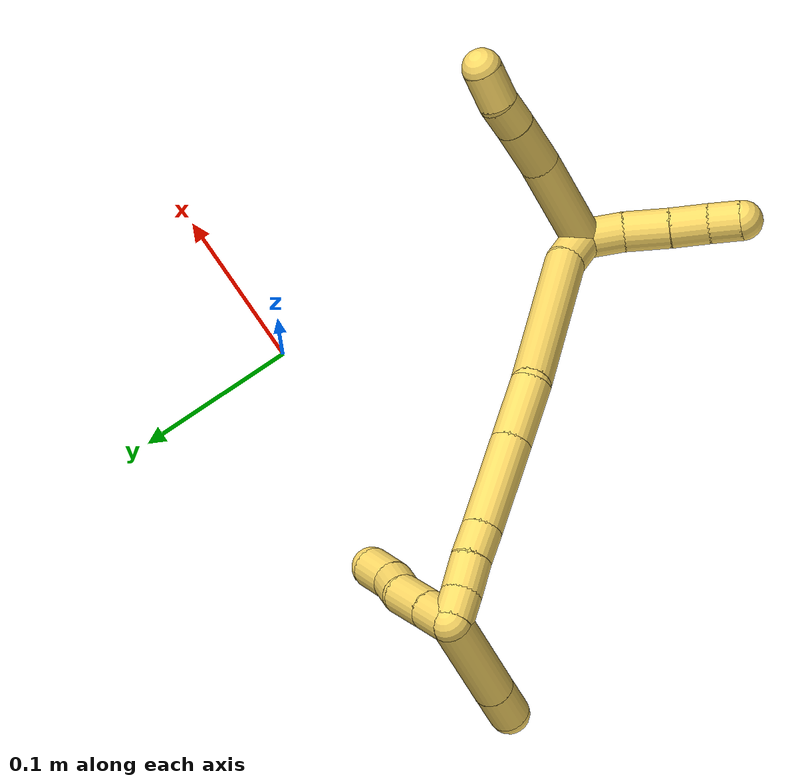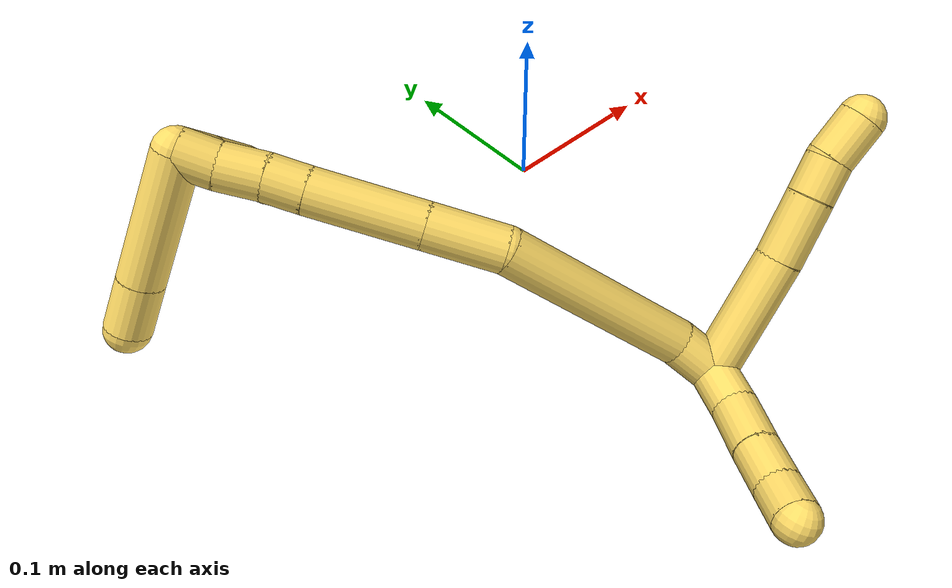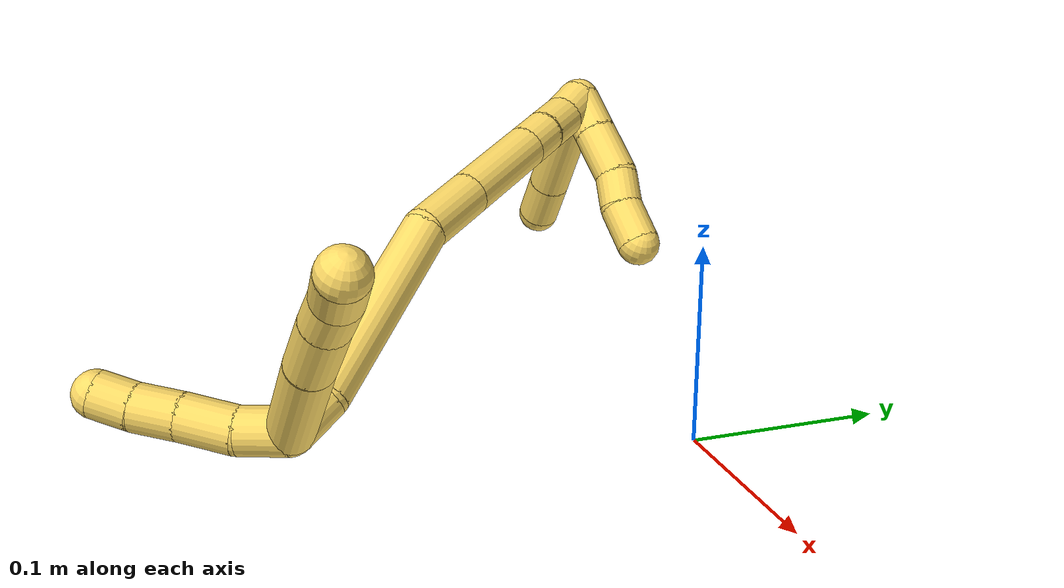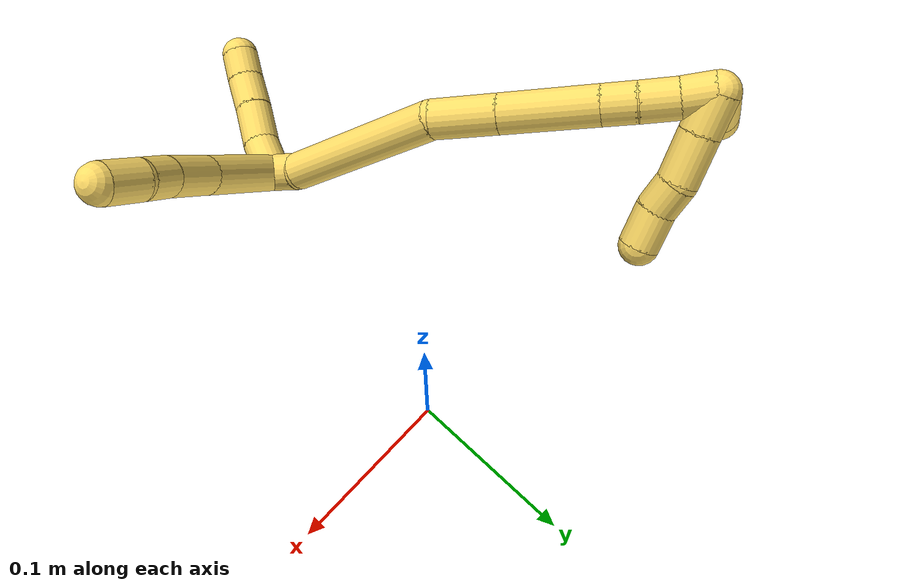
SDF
<sdf version="1.7">
 <world name="default">
  <model name="5">
   <static>0</static>
   <link name="5">
    <collision name="collision-cylinder-e_1_2_8">
     <pose>-0.00293 -0.005165 -0.033454 2.98841 -0.086332 -1.02531</pose>
     <geometry><cylinder><radius>0.0125</radius><length>0.067955</length></cylinder></geometry>
     <surface>
      <friction><ode><mu>1.16</mu><mu2>1.16</mu2><slip1>0</slip1><slip2>0</slip2></ode></friction>
      <contact><ode><kp>1e+06</kp><kd>1</kd><max_vel>0</max_vel><min_depth>0.001</min_depth></ode></contact>
     </surface>
    </collision>
    <visual name="visual-cylinder-e_1_2_8">
     <pose>-0.00293 -0.005165 -0.033454 2.98841 -0.086332 -1.02531</pose>
     <geometry><cylinder><radius>0.0125</radius><length>0.067955</length></cylinder></geometry>
     <material><ambient>1 0.858824 0.4 1</ambient></material>
    </visual>
    <collision name="collision-cylinder-e_2_8_9">
     <pose>-0.007709 -0.011854 -0.084584 3.05559 -0.103855 -1.75862</pose>
     <geometry><cylinder><radius>0.0125</radius><length>0.035674</length></cylinder></geometry>
     <surface>
      <friction><ode><mu>1.16</mu><mu2>1.16</mu2><slip1>0</slip1><slip2>0</slip2></ode></friction>
      <contact><ode><kp>1e+06</kp><kd>1</kd><max_vel>0</max_vel><min_depth>0.001</min_depth></ode></contact>
     </surface>
    </collision>
    <visual name="visual-cylinder-e_2_8_9">
     <pose>-0.007709 -0.011854 -0.084584 3.05559 -0.103855 -1.75862</pose>
     <geometry><cylinder><radius>0.0125</radius><length>0.035674</length></cylinder></geometry>
     <material><ambient>1 0.858824 0.4 1</ambient></material>
    </visual>
    <collision name="collision-cylinder-e_3_9_10">
     <pose>-0.011094 -0.014448 -0.112663 3.03906 -0.14588 -1.91717</pose>
     <geometry><cylinder><radius>0.0125</radius><length>0.02114</length></cylinder></geometry>
     <surface>
      <friction><ode><mu>1.16</mu><mu2>1.16</mu2><slip1>0</slip1><slip2>0</slip2></ode></friction>
      <contact><ode><kp>1e+06</kp><kd>1</kd><max_vel>0</max_vel><min_depth>0.001</min_depth></ode></contact>
     </surface>
    </collision>
    <visual name="visual-cylinder-e_3_9_10">
     <pose>-0.011094 -0.014448 -0.112663 3.03906 -0.14588 -1.91717</pose>
     <geometry><cylinder><radius>0.0125</radius><length>0.02114</length></cylinder></geometry>
     <material><ambient>1 0.858824 0.4 1</ambient></material>
    </visual>
    <collision name="collision-cylinder-e_4_10_6">
     <pose>-0.013853 -0.019404 -0.135005 2.82693 -0.09704 -0.594054</pose>
     <geometry><cylinder><radius>0.0125</radius><length>0.025231</length></cylinder></geometry>
     <surface>
      <friction><ode><mu>1.16</mu><mu2>1.16</mu2><slip1>0</slip1><slip2>0</slip2></ode></friction>
      <contact><ode><kp>1e+06</kp><kd>1</kd><max_vel>0</max_vel><min_depth>0.001</min_depth></ode></contact>
     </surface>
    </collision>
    <visual name="visual-cylinder-e_4_10_6">
     <pose>-0.013853 -0.019404 -0.135005 2.82693 -0.09704 -0.594054</pose>
     <geometry><cylinder><radius>0.0125</radius><length>0.025231</length></cylinder></geometry>
     <material><ambient>1 0.858824 0.4 1</ambient></material>
    </visual>
    <collision name="collision-cylinder-e_1_2_11">
     <pose>0.01165 -0.00392 0.003797 0.80127 1.13272 0.526134</pose>
     <geometry><cylinder><radius>0.0125</radius><length>0.025731</length></cylinder></geometry>
     <surface>
      <friction><ode><mu>1.16</mu><mu2>1.16</mu2><slip1>0</slip1><slip2>0</slip2></ode></friction>
      <contact><ode><kp>1e+06</kp><kd>1</kd><max_vel>0</max_vel><min_depth>0.001</min_depth></ode></contact>
     </surface>
    </collision>
    <visual name="visual-cylinder-e_1_2_11">
     <pose>0.01165 -0.00392 0.003797 0.80127 1.13272 0.526134</pose>
     <geometry><cylinder><radius>0.0125</radius><length>0.025731</length></cylinder></geometry>
     <material><ambient>1 0.858824 0.4 1</ambient></material>
    </visual>
    <collision name="collision-cylinder-e_2_11_12">
     <pose>0.037545 -0.009458 0.010554 0.500448 1.33828 0.398882</pose>
     <geometry><cylinder><radius>0.0125</radius><length>0.029276</length></cylinder></geometry>
     <surface>
      <friction><ode><mu>1.16</mu><mu2>1.16</mu2><slip1>0</slip1><slip2>0</slip2></ode></friction>
      <contact><ode><kp>1e+06</kp><kd>1</kd><max_vel>0</max_vel><min_depth>0.001</min_depth></ode></contact>
     </surface>
    </collision>
    <visual name="visual-cylinder-e_2_11_12">
     <pose>0.037545 -0.009458 0.010554 0.500448 1.33828 0.398882</pose>
     <geometry><cylinder><radius>0.0125</radius><length>0.029276</length></cylinder></geometry>
     <material><ambient>1 0.858824 0.4 1</ambient></material>
    </visual>
    <collision name="collision-cylinder-e_3_12_13">
     <pose>0.063541 -0.012972 0.015961 0.65896 1.31321 0.515341</pose>
     <geometry><cylinder><radius>0.0125</radius><length>0.024306</length></cylinder></geometry>
     <surface>
      <friction><ode><mu>1.16</mu><mu2>1.16</mu2><slip1>0</slip1><slip2>0</slip2></ode></friction>
      <contact><ode><kp>1e+06</kp><kd>1</kd><max_vel>0</max_vel><min_depth>0.001</min_depth></ode></contact>
     </surface>
    </collision>
    <visual name="visual-cylinder-e_3_12_13">
     <pose>0.063541 -0.012972 0.015961 0.65896 1.31321 0.515341</pose>
     <geometry><cylinder><radius>0.0125</radius><length>0.024306</length></cylinder></geometry>
     <material><ambient>1 0.858824 0.4 1</ambient></material>
    </visual>
    <collision name="collision-cylinder-e_4_13_5">
     <pose>0.085526 -0.015637 0.019708 0.534941 1.42428 0.464585</pose>
     <geometry><cylinder><radius>0.0125</radius><length>0.020687</length></cylinder></geometry>
     <surface>
      <friction><ode><mu>1.16</mu><mu2>1.16</mu2><slip1>0</slip1><slip2>0</slip2></ode></friction>
      <contact><ode><kp>1e+06</kp><kd>1</kd><max_vel>0</max_vel><min_depth>0.001</min_depth></ode></contact>
     </surface>
    </collision>
    <visual name="visual-cylinder-e_4_13_5">
     <pose>0.085526 -0.015637 0.019708 0.534941 1.42428 0.464585</pose>
     <geometry><cylinder><radius>0.0125</radius><length>0.020687</length></cylinder></geometry>
     <material><ambient>1 0.858824 0.4 1</ambient></material>
    </visual>
    <collision name="collision-cylinder-e_1_2_14">
     <pose>-0.003146 0.011356 -0.003871 -1.8993 -0.256475 0.356537</pose>
     <geometry><cylinder><radius>0.0125</radius><length>0.024806</length></cylinder></geometry>
     <surface>
      <friction><ode><mu>1.16</mu><mu2>1.16</mu2><slip1>0</slip1><slip2>0</slip2></ode></friction>
      <contact><ode><kp>1e+06</kp><kd>1</kd><max_vel>0</max_vel><min_depth>0.001</min_depth></ode></contact>
     </surface>
    </collision>
    <visual name="visual-cylinder-e_1_2_14">
     <pose>-0.003146 0.011356 -0.003871 -1.8993 -0.256475 0.356537</pose>
     <geometry><cylinder><radius>0.0125</radius><length>0.024806</length></cylinder></geometry>
     <material><ambient>1 0.858824 0.4 1</ambient></material>
    </visual>
    <collision name="collision-cylinder-e_2_14_15">
     <pose>-0.006309 0.075965 -0.019875 -1.79481 -0.000297 0.000372</pose>
     <geometry><cylinder><radius>0.0125</radius><length>0.109238</length></cylinder></geometry>
     <surface>
      <friction><ode><mu>1.16</mu><mu2>1.16</mu2><slip1>0</slip1><slip2>0</slip2></ode></friction>
      <contact><ode><kp>1e+06</kp><kd>1</kd><max_vel>0</max_vel><min_depth>0.001</min_depth></ode></contact>
     </surface>
    </collision>
    <visual name="visual-cylinder-e_2_14_15">
     <pose>-0.006309 0.075965 -0.019875 -1.79481 -0.000297 0.000372</pose>
     <geometry><cylinder><radius>0.0125</radius><length>0.109238</length></cylinder></geometry>
     <material><ambient>1 0.858824 0.4 1</ambient></material>
    </visual>
    <collision name="collision-cylinder-e_3_15_16">
     <pose>-0.010556 0.149534 -0.030943 -1.51841 -0.205077 0.194673</pose>
     <geometry><cylinder><radius>0.0125</radius><length>0.041555</length></cylinder></geometry>
     <surface>
      <friction><ode><mu>1.16</mu><mu2>1.16</mu2><slip1>0</slip1><slip2>0</slip2></ode></friction>
      <contact><ode><kp>1e+06</kp><kd>1</kd><max_vel>0</max_vel><min_depth>0.001</min_depth></ode></contact>
     </surface>
    </collision>
    <visual name="visual-cylinder-e_3_15_16">
     <pose>-0.010556 0.149534 -0.030943 -1.51841 -0.205077 0.194673</pose>
     <geometry><cylinder><radius>0.0125</radius><length>0.041555</length></cylinder></geometry>
     <material><ambient>1 0.858824 0.4 1</ambient></material>
    </visual>
    <collision name="collision-cylinder-e_4_16_17">
     <pose>-0.020856 0.199157 -0.028343 -1.51848 -0.203911 0.19358</pose>
     <geometry><cylinder><radius>0.0125</radius><length>0.059939</length></cylinder></geometry>
     <surface>
      <friction><ode><mu>1.16</mu><mu2>1.16</mu2><slip1>0</slip1><slip2>0</slip2></ode></friction>
      <contact><ode><kp>1e+06</kp><kd>1</kd><max_vel>0</max_vel><min_depth>0.001</min_depth></ode></contact>
     </surface>
    </collision>
    <visual name="visual-cylinder-e_4_16_17">
     <pose>-0.020856 0.199157 -0.028343 -1.51848 -0.203911 0.19358</pose>
     <geometry><cylinder><radius>0.0125</radius><length>0.059939</length></cylinder></geometry>
     <material><ambient>1 0.858824 0.4 1</ambient></material>
    </visual>
    <collision name="collision-cylinder-e_5_17_18">
     <pose>-0.029093 0.238597 -0.026533 -1.54363 -0.210735 0.205127</pose>
     <geometry><cylinder><radius>0.0125</radius><length>0.02073</length></cylinder></geometry>
     <surface>
      <friction><ode><mu>1.16</mu><mu2>1.16</mu2><slip1>0</slip1><slip2>0</slip2></ode></friction>
      <contact><ode><kp>1e+06</kp><kd>1</kd><max_vel>0</max_vel><min_depth>0.001</min_depth></ode></contact>
     </surface>
    </collision>
    <visual name="visual-cylinder-e_5_17_18">
     <pose>-0.029093 0.238597 -0.026533 -1.54363 -0.210735 0.205127</pose>
     <geometry><cylinder><radius>0.0125</radius><length>0.02073</length></cylinder></geometry>
     <material><ambient>1 0.858824 0.4 1</ambient></material>
    </visual>
    <collision name="collision-cylinder-e_6_18_19">
     <pose>-0.033379 0.260164 -0.025045 -1.46512 -0.182113 0.163904</pose>
     <geometry><cylinder><radius>0.0125</radius><length>0.023385</length></cylinder></geometry>
     <surface>
      <friction><ode><mu>1.16</mu><mu2>1.16</mu2><slip1>0</slip1><slip2>0</slip2></ode></friction>
      <contact><ode><kp>1e+06</kp><kd>1</kd><max_vel>0</max_vel><min_depth>0.001</min_depth></ode></contact>
     </surface>
    </collision>
    <visual name="visual-cylinder-e_6_18_19">
     <pose>-0.033379 0.260164 -0.025045 -1.46512 -0.182113 0.163904</pose>
     <geometry><cylinder><radius>0.0125</radius><length>0.023385</length></cylinder></geometry>
     <material><ambient>1 0.858824 0.4 1</ambient></material>
    </visual>
    <collision name="collision-cylinder-e_7_19_1">
     <pose>-0.036932 0.281668 -0.024084 -1.59579 -0.141563 0.145134</pose>
     <geometry><cylinder><radius>0.0125</radius><length>0.020347</length></cylinder></geometry>
     <surface>
      <friction><ode><mu>1.16</mu><mu2>1.16</mu2><slip1>0</slip1><slip2>0</slip2></ode></friction>
      <contact><ode><kp>1e+06</kp><kd>1</kd><max_vel>0</max_vel><min_depth>0.001</min_depth></ode></contact>
     </surface>
    </collision>
    <visual name="visual-cylinder-e_7_19_1">
     <pose>-0.036932 0.281668 -0.024084 -1.59579 -0.141563 0.145134</pose>
     <geometry><cylinder><radius>0.0125</radius><length>0.020347</length></cylinder></geometry>
     <material><ambient>1 0.858824 0.4 1</ambient></material>
    </visual>
    <collision name="collision-cylinder-e_1_1_20">
     <pose>-0.047541 0.284214 -0.021379 1.19628 -0.84851 -0.597165</pose>
     <geometry><cylinder><radius>0.0125</radius><length>0.024453</length></cylinder></geometry>
     <surface>
      <friction><ode><mu>1.16</mu><mu2>1.16</mu2><slip1>0</slip1><slip2>0</slip2></ode></friction>
      <contact><ode><kp>1e+06</kp><kd>1</kd><max_vel>0</max_vel><min_depth>0.001</min_depth></ode></contact>
     </surface>
    </collision>
    <visual name="visual-cylinder-e_1_1_20">
     <pose>-0.047541 0.284214 -0.021379 1.19628 -0.84851 -0.597165</pose>
     <geometry><cylinder><radius>0.0125</radius><length>0.024453</length></cylinder></geometry>
     <material><ambient>1 0.858824 0.4 1</ambient></material>
    </visual>
    <collision name="collision-cylinder-e_2_20_21">
     <pose>-0.068125 0.267423 -0.014636 1.18299 -0.850605 -0.590711</pose>
     <geometry><cylinder><radius>0.0125</radius><length>0.030361</length></cylinder></geometry>
     <surface>
      <friction><ode><mu>1.16</mu><mu2>1.16</mu2><slip1>0</slip1><slip2>0</slip2></ode></friction>
      <contact><ode><kp>1e+06</kp><kd>1</kd><max_vel>0</max_vel><min_depth>0.001</min_depth></ode></contact>
     </surface>
    </collision>
    <visual name="visual-cylinder-e_2_20_21">
     <pose>-0.068125 0.267423 -0.014636 1.18299 -0.850605 -0.590711</pose>
     <geometry><cylinder><radius>0.0125</radius><length>0.030361</length></cylinder></geometry>
     <material><ambient>1 0.858824 0.4 1</ambient></material>
    </visual>
    <collision name="collision-cylinder-e_3_21_22">
     <pose>-0.085052 0.250579 -0.007078 1.10882 -0.577665 -0.363902</pose>
     <geometry><cylinder><radius>0.0125</radius><length>0.020202</length></cylinder></geometry>
     <surface>
      <friction><ode><mu>1.16</mu><mu2>1.16</mu2><slip1>0</slip1><slip2>0</slip2></ode></friction>
      <contact><ode><kp>1e+06</kp><kd>1</kd><max_vel>0</max_vel><min_depth>0.001</min_depth></ode></contact>
     </surface>
    </collision>
    <visual name="visual-cylinder-e_3_21_22">
     <pose>-0.085052 0.250579 -0.007078 1.10882 -0.577665 -0.363902</pose>
     <geometry><cylinder><radius>0.0125</radius><length>0.020202</length></cylinder></geometry>
     <material><ambient>1 0.858824 0.4 1</ambient></material>
    </visual>
    <collision name="collision-cylinder-e_4_22_4">
     <pose>-0.099737 0.235148 -0.000102 1.18358 -0.82414 -0.571508</pose>
     <geometry><cylinder><radius>0.0125</radius><length>0.024984</length></cylinder></geometry>
     <surface>
      <friction><ode><mu>1.16</mu><mu2>1.16</mu2><slip1>0</slip1><slip2>0</slip2></ode></friction>
      <contact><ode><kp>1e+06</kp><kd>1</kd><max_vel>0</max_vel><min_depth>0.001</min_depth></ode></contact>
     </surface>
    </collision>
    <visual name="visual-cylinder-e_4_22_4">
     <pose>-0.099737 0.235148 -0.000102 1.18358 -0.82414 -0.571508</pose>
     <geometry><cylinder><radius>0.0125</radius><length>0.024984</length></cylinder></geometry>
     <material><ambient>1 0.858824 0.4 1</ambient></material>
    </visual>
    <collision name="collision-cylinder-e_1_1_23">
     <pose>-0.038562 0.292095 0.011582 -0.009981 -0.005415 2.7e-05</pose>
     <geometry><cylinder><radius>0.0125</radius><length>0.071839</length></cylinder></geometry>
     <surface>
      <friction><ode><mu>1.16</mu><mu2>1.16</mu2><slip1>0</slip1><slip2>0</slip2></ode></friction>
      <contact><ode><kp>1e+06</kp><kd>1</kd><max_vel>0</max_vel><min_depth>0.001</min_depth></ode></contact>
     </surface>
    </collision>
    <visual name="visual-cylinder-e_1_1_23">
     <pose>-0.038562 0.292095 0.011582 -0.009981 -0.005415 2.7e-05</pose>
     <geometry><cylinder><radius>0.0125</radius><length>0.071839</length></cylinder></geometry>
     <material><ambient>1 0.858824 0.4 1</ambient></material>
    </visual>
    <collision name="collision-cylinder-e_2_23_3">
     <pose>-0.038788 0.292526 0.061579 -0.005178 -0.002257 6e-06</pose>
     <geometry><cylinder><radius>0.0125</radius><length>0.028161</length></cylinder></geometry>
     <surface>
      <friction><ode><mu>1.16</mu><mu2>1.16</mu2><slip1>0</slip1><slip2>0</slip2></ode></friction>
      <contact><ode><kp>1e+06</kp><kd>1</kd><max_vel>0</max_vel><min_depth>0.001</min_depth></ode></contact>
     </surface>
    </collision>
    <visual name="visual-cylinder-e_2_23_3">
     <pose>-0.038788 0.292526 0.061579 -0.005178 -0.002257 6e-06</pose>
     <geometry><cylinder><radius>0.0125</radius><length>0.028161</length></cylinder></geometry>
     <material><ambient>1 0.858824 0.4 1</ambient></material>
    </visual>
    <collision name="collision-sphere-3">
     <pose>-0.03882 0.292599 0.075659 0 -0 0</pose>
     <geometry><sphere><radius>0.0125</radius></sphere></geometry>
     <surface>
      <friction><ode><mu>1.16</mu><mu2>1.16</mu2><slip1>0</slip1><slip2>0</slip2></ode></friction>
      <contact><ode><kp>1e+06</kp><kd>1</kd><max_vel>0</max_vel><min_depth>0.001</min_depth></ode></contact>
     </surface>
    </collision>
    <visual name="visual-sphere-3">
     <pose>-0.03882 0.292599 0.075659 0 -0 0</pose>
     <geometry><sphere><radius>0.0125</radius></sphere></geometry>
     <material><ambient>1 0.858824 0.4 1</ambient></material>
    </visual>
    <collision name="collision-sphere-23">
     <pose>-0.038756 0.292453 0.047499 0 -0 0</pose>
     <geometry><sphere><radius>0.0125</radius></sphere></geometry>
     <surface>
      <friction><ode><mu>1.16</mu><mu2>1.16</mu2><slip1>0</slip1><slip2>0</slip2></ode></friction>
      <contact><ode><kp>1e+06</kp><kd>1</kd><max_vel>0</max_vel><min_depth>0.001</min_depth></ode></contact>
     </surface>
    </collision>
    <visual name="visual-sphere-23">
     <pose>-0.038756 0.292453 0.047499 0 -0 0</pose>
     <geometry><sphere><radius>0.0125</radius></sphere></geometry>
     <material><ambient>1 0.858824 0.4 1</ambient></material>
    </visual>
    <collision name="collision-sphere-4">
     <pose>-0.108905 0.227292 0.003102 0 -0 0</pose>
     <geometry><sphere><radius>0.0125</radius></sphere></geometry>
     <surface>
      <friction><ode><mu>1.16</mu><mu2>1.16</mu2><slip1>0</slip1><slip2>0</slip2></ode></friction>
      <contact><ode><kp>1e+06</kp><kd>1</kd><max_vel>0</max_vel><min_depth>0.001</min_depth></ode></contact>
     </surface>
    </collision>
    <visual name="visual-sphere-4">
     <pose>-0.108905 0.227292 0.003102 0 -0 0</pose>
     <geometry><sphere><radius>0.0125</radius></sphere></geometry>
     <material><ambient>1 0.858824 0.4 1</ambient></material>
    </visual>
    <collision name="collision-sphere-22">
     <pose>-0.090568 0.243004 -0.003306 0 -0 0</pose>
     <geometry><sphere><radius>0.0125</radius></sphere></geometry>
     <surface>
      <friction><ode><mu>1.16</mu><mu2>1.16</mu2><slip1>0</slip1><slip2>0</slip2></ode></friction>
      <contact><ode><kp>1e+06</kp><kd>1</kd><max_vel>0</max_vel><min_depth>0.001</min_depth></ode></contact>
     </surface>
    </collision>
    <visual name="visual-sphere-22">
     <pose>-0.090568 0.243004 -0.003306 0 -0 0</pose>
     <geometry><sphere><radius>0.0125</radius></sphere></geometry>
     <material><ambient>1 0.858824 0.4 1</ambient></material>
    </visual>
    <collision name="collision-sphere-21">
     <pose>-0.079536 0.258154 -0.010849 0 -0 0</pose>
     <geometry><sphere><radius>0.0125</radius></sphere></geometry>
     <surface>
      <friction><ode><mu>1.16</mu><mu2>1.16</mu2><slip1>0</slip1><slip2>0</slip2></ode></friction>
      <contact><ode><kp>1e+06</kp><kd>1</kd><max_vel>0</max_vel><min_depth>0.001</min_depth></ode></contact>
     </surface>
    </collision>
    <visual name="visual-sphere-21">
     <pose>-0.079536 0.258154 -0.010849 0 -0 0</pose>
     <geometry><sphere><radius>0.0125</radius></sphere></geometry>
     <material><ambient>1 0.858824 0.4 1</ambient></material>
    </visual>
    <collision name="collision-sphere-20">
     <pose>-0.056714 0.276691 -0.018422 0 -0 0</pose>
     <geometry><sphere><radius>0.0125</radius></sphere></geometry>
     <surface>
      <friction><ode><mu>1.16</mu><mu2>1.16</mu2><slip1>0</slip1><slip2>0</slip2></ode></friction>
      <contact><ode><kp>1e+06</kp><kd>1</kd><max_vel>0</max_vel><min_depth>0.001</min_depth></ode></contact>
     </surface>
    </collision>
    <visual name="visual-sphere-20">
     <pose>-0.056714 0.276691 -0.018422 0 -0 0</pose>
     <geometry><sphere><radius>0.0125</radius></sphere></geometry>
     <material><ambient>1 0.858824 0.4 1</ambient></material>
    </visual>
    <collision name="collision-sphere-11">
     <pose>0.023301 -0.007839 0.007594 0 -0 0</pose>
     <geometry><sphere><radius>0.0125</radius></sphere></geometry>
     <surface>
      <friction><ode><mu>1.16</mu><mu2>1.16</mu2><slip1>0</slip1><slip2>0</slip2></ode></friction>
      <contact><ode><kp>1e+06</kp><kd>1</kd><max_vel>0</max_vel><min_depth>0.001</min_depth></ode></contact>
     </surface>
    </collision>
    <visual name="visual-sphere-11">
     <pose>0.023301 -0.007839 0.007594 0 -0 0</pose>
     <geometry><sphere><radius>0.0125</radius></sphere></geometry>
     <material><ambient>1 0.858824 0.4 1</ambient></material>
    </visual>
    <collision name="collision-sphere-6">
     <pose>-0.015075 -0.023291 -0.146945 0 -0 0</pose>
     <geometry><sphere><radius>0.0125</radius></sphere></geometry>
     <surface>
      <friction><ode><mu>1.16</mu><mu2>1.16</mu2><slip1>0</slip1><slip2>0</slip2></ode></friction>
      <contact><ode><kp>1e+06</kp><kd>1</kd><max_vel>0</max_vel><min_depth>0.001</min_depth></ode></contact>
     </surface>
    </collision>
    <visual name="visual-sphere-6">
     <pose>-0.015075 -0.023291 -0.146945 0 -0 0</pose>
     <geometry><sphere><radius>0.0125</radius></sphere></geometry>
     <material><ambient>1 0.858824 0.4 1</ambient></material>
    </visual>
    <collision name="collision-sphere-10">
     <pose>-0.012631 -0.015518 -0.123066 0 -0 0</pose>
     <geometry><sphere><radius>0.0125</radius></sphere></geometry>
     <surface>
      <friction><ode><mu>1.16</mu><mu2>1.16</mu2><slip1>0</slip1><slip2>0</slip2></ode></friction>
      <contact><ode><kp>1e+06</kp><kd>1</kd><max_vel>0</max_vel><min_depth>0.001</min_depth></ode></contact>
     </surface>
    </collision>
    <visual name="visual-sphere-10">
     <pose>-0.012631 -0.015518 -0.123066 0 -0 0</pose>
     <geometry><sphere><radius>0.0125</radius></sphere></geometry>
     <material><ambient>1 0.858824 0.4 1</ambient></material>
    </visual>
    <collision name="collision-sphere-9">
     <pose>-0.009558 -0.013378 -0.10226 0 -0 0</pose>
     <geometry><sphere><radius>0.0125</radius></sphere></geometry>
     <surface>
      <friction><ode><mu>1.16</mu><mu2>1.16</mu2><slip1>0</slip1><slip2>0</slip2></ode></friction>
      <contact><ode><kp>1e+06</kp><kd>1</kd><max_vel>0</max_vel><min_depth>0.001</min_depth></ode></contact>
     </surface>
    </collision>
    <visual name="visual-sphere-9">
     <pose>-0.009558 -0.013378 -0.10226 0 -0 0</pose>
     <geometry><sphere><radius>0.0125</radius></sphere></geometry>
     <material><ambient>1 0.858824 0.4 1</ambient></material>
    </visual>
    <collision name="collision-sphere-2">
     <geometry><sphere><radius>0.0125</radius></sphere></geometry>
     <surface>
      <friction><ode><mu>1.16</mu><mu2>1.16</mu2><slip1>0</slip1><slip2>0</slip2></ode></friction>
      <contact><ode><kp>1e+06</kp><kd>1</kd><max_vel>0</max_vel><min_depth>0.001</min_depth></ode></contact>
     </surface>
    </collision>
    <visual name="visual-sphere-2">
     <geometry><sphere><radius>0.0125</radius></sphere></geometry>
     <material><ambient>1 0.858824 0.4 1</ambient></material>
    </visual>
    <collision name="collision-sphere-19">
     <pose>-0.035497 0.271599 -0.023832 0 -0 0</pose>
     <geometry><sphere><radius>0.0125</radius></sphere></geometry>
     <surface>
      <friction><ode><mu>1.16</mu><mu2>1.16</mu2><slip1>0</slip1><slip2>0</slip2></ode></friction>
      <contact><ode><kp>1e+06</kp><kd>1</kd><max_vel>0</max_vel><min_depth>0.001</min_depth></ode></contact>
     </surface>
    </collision>
    <visual name="visual-sphere-19">
     <pose>-0.035497 0.271599 -0.023832 0 -0 0</pose>
     <geometry><sphere><radius>0.0125</radius></sphere></geometry>
     <material><ambient>1 0.858824 0.4 1</ambient></material>
    </visual>
    <collision name="collision-sphere-8">
     <pose>-0.005859 -0.01033 -0.066909 0 -0 0</pose>
     <geometry><sphere><radius>0.0125</radius></sphere></geometry>
     <surface>
      <friction><ode><mu>1.16</mu><mu2>1.16</mu2><slip1>0</slip1><slip2>0</slip2></ode></friction>
      <contact><ode><kp>1e+06</kp><kd>1</kd><max_vel>0</max_vel><min_depth>0.001</min_depth></ode></contact>
     </surface>
    </collision>
    <visual name="visual-sphere-8">
     <pose>-0.005859 -0.01033 -0.066909 0 -0 0</pose>
     <geometry><sphere><radius>0.0125</radius></sphere></geometry>
     <material><ambient>1 0.858824 0.4 1</ambient></material>
    </visual>
    <collision name="collision-sphere-12">
     <pose>0.051789 -0.011076 0.013513 0 -0 0</pose>
     <geometry><sphere><radius>0.0125</radius></sphere></geometry>
     <surface>
      <friction><ode><mu>1.16</mu><mu2>1.16</mu2><slip1>0</slip1><slip2>0</slip2></ode></friction>
      <contact><ode><kp>1e+06</kp><kd>1</kd><max_vel>0</max_vel><min_depth>0.001</min_depth></ode></contact>
     </surface>
    </collision>
    <visual name="visual-sphere-12">
     <pose>0.051789 -0.011076 0.013513 0 -0 0</pose>
     <geometry><sphere><radius>0.0125</radius></sphere></geometry>
     <material><ambient>1 0.858824 0.4 1</ambient></material>
    </visual>
    <collision name="collision-sphere-13">
     <pose>0.075293 -0.014868 0.018409 0 -0 0</pose>
     <geometry><sphere><radius>0.0125</radius></sphere></geometry>
     <surface>
      <friction><ode><mu>1.16</mu><mu2>1.16</mu2><slip1>0</slip1><slip2>0</slip2></ode></friction>
      <contact><ode><kp>1e+06</kp><kd>1</kd><max_vel>0</max_vel><min_depth>0.001</min_depth></ode></contact>
     </surface>
    </collision>
    <visual name="visual-sphere-13">
     <pose>0.075293 -0.014868 0.018409 0 -0 0</pose>
     <geometry><sphere><radius>0.0125</radius></sphere></geometry>
     <material><ambient>1 0.858824 0.4 1</ambient></material>
    </visual>
    <collision name="collision-sphere-5">
     <pose>0.095759 -0.016407 0.021007 0 -0 0</pose>
     <geometry><sphere><radius>0.0125</radius></sphere></geometry>
     <surface>
      <friction><ode><mu>1.16</mu><mu2>1.16</mu2><slip1>0</slip1><slip2>0</slip2></ode></friction>
      <contact><ode><kp>1e+06</kp><kd>1</kd><max_vel>0</max_vel><min_depth>0.001</min_depth></ode></contact>
     </surface>
    </collision>
    <visual name="visual-sphere-5">
     <pose>0.095759 -0.016407 0.021007 0 -0 0</pose>
     <geometry><sphere><radius>0.0125</radius></sphere></geometry>
     <material><ambient>1 0.858824 0.4 1</ambient></material>
    </visual>
    <collision name="collision-sphere-14">
     <pose>-0.006293 0.022711 -0.007741 0 -0 0</pose>
     <geometry><sphere><radius>0.0125</radius></sphere></geometry>
     <surface>
      <friction><ode><mu>1.16</mu><mu2>1.16</mu2><slip1>0</slip1><slip2>0</slip2></ode></friction>
      <contact><ode><kp>1e+06</kp><kd>1</kd><max_vel>0</max_vel><min_depth>0.001</min_depth></ode></contact>
     </surface>
    </collision>
    <visual name="visual-sphere-14">
     <pose>-0.006293 0.022711 -0.007741 0 -0 0</pose>
     <geometry><sphere><radius>0.0125</radius></sphere></geometry>
     <material><ambient>1 0.858824 0.4 1</ambient></material>
    </visual>
    <collision name="collision-sphere-15">
     <pose>-0.006325 0.12922 -0.032008 0 -0 0</pose>
     <geometry><sphere><radius>0.0125</radius></sphere></geometry>
     <surface>
      <friction><ode><mu>1.16</mu><mu2>1.16</mu2><slip1>0</slip1><slip2>0</slip2></ode></friction>
      <contact><ode><kp>1e+06</kp><kd>1</kd><max_vel>0</max_vel><min_depth>0.001</min_depth></ode></contact>
     </surface>
    </collision>
    <visual name="visual-sphere-15">
     <pose>-0.006325 0.12922 -0.032008 0 -0 0</pose>
     <geometry><sphere><radius>0.0125</radius></sphere></geometry>
     <material><ambient>1 0.858824 0.4 1</ambient></material>
    </visual>
    <collision name="collision-sphere-16">
     <pose>-0.014787 0.169848 -0.029878 0 -0 0</pose>
     <geometry><sphere><radius>0.0125</radius></sphere></geometry>
     <surface>
      <friction><ode><mu>1.16</mu><mu2>1.16</mu2><slip1>0</slip1><slip2>0</slip2></ode></friction>
      <contact><ode><kp>1e+06</kp><kd>1</kd><max_vel>0</max_vel><min_depth>0.001</min_depth></ode></contact>
     </surface>
    </collision>
    <visual name="visual-sphere-16">
     <pose>-0.014787 0.169848 -0.029878 0 -0 0</pose>
     <geometry><sphere><radius>0.0125</radius></sphere></geometry>
     <material><ambient>1 0.858824 0.4 1</ambient></material>
    </visual>
    <collision name="collision-sphere-17">
     <pose>-0.026925 0.228465 -0.026808 0 -0 0</pose>
     <geometry><sphere><radius>0.0125</radius></sphere></geometry>
     <surface>
      <friction><ode><mu>1.16</mu><mu2>1.16</mu2><slip1>0</slip1><slip2>0</slip2></ode></friction>
      <contact><ode><kp>1e+06</kp><kd>1</kd><max_vel>0</max_vel><min_depth>0.001</min_depth></ode></contact>
     </surface>
    </collision>
    <visual name="visual-sphere-17">
     <pose>-0.026925 0.228465 -0.026808 0 -0 0</pose>
     <geometry><sphere><radius>0.0125</radius></sphere></geometry>
     <material><ambient>1 0.858824 0.4 1</ambient></material>
    </visual>
    <collision name="collision-sphere-18">
     <pose>-0.031261 0.248729 -0.026258 0 -0 0</pose>
     <geometry><sphere><radius>0.0125</radius></sphere></geometry>
     <surface>
      <friction><ode><mu>1.16</mu><mu2>1.16</mu2><slip1>0</slip1><slip2>0</slip2></ode></friction>
      <contact><ode><kp>1e+06</kp><kd>1</kd><max_vel>0</max_vel><min_depth>0.001</min_depth></ode></contact>
     </surface>
    </collision>
    <visual name="visual-sphere-18">
     <pose>-0.031261 0.248729 -0.026258 0 -0 0</pose>
     <geometry><sphere><radius>0.0125</radius></sphere></geometry>
     <material><ambient>1 0.858824 0.4 1</ambient></material>
    </visual>
    <collision name="collision-sphere-1">
     <pose>-0.038367 0.291736 -0.024336 0 -0 0</pose>
     <geometry><sphere><radius>0.0125</radius></sphere></geometry>
     <surface>
      <friction><ode><mu>1.16</mu><mu2>1.16</mu2><slip1>0</slip1><slip2>0</slip2></ode></friction>
      <contact><ode><kp>1e+06</kp><kd>1</kd><max_vel>0</max_vel><min_depth>0.001</min_depth></ode></contact>
     </surface>
    </collision>
    <visual name="visual-sphere-1">
     <pose>-0.038367 0.291736 -0.024336 0 -0 0</pose>
     <geometry><sphere><radius>0.0125</radius></sphere></geometry>
     <material><ambient>1 0.858824 0.4 1</ambient></material>
    </visual>
    <inertial>
     <pose>-0.01632 0.12818 -0.020401 0 -0 0</pose>
     <mass>0.75</mass>
     <inertia><ixx>0.000176</ixx><ixy>0</ixy><ixz>0</ixz><iyy>2e-06</iyy><iyz>0</iyz><izz>-0.000125</izz></inertia>
    </inertial>
   </link>
   <pose>-0.046446 -0.191965 0.012213 2.7252 -0.381186 -2.1438</pose>
  </model>
 </world>
</sdf>
